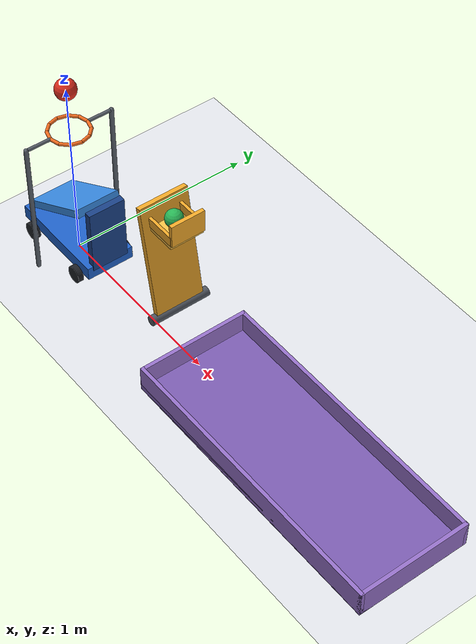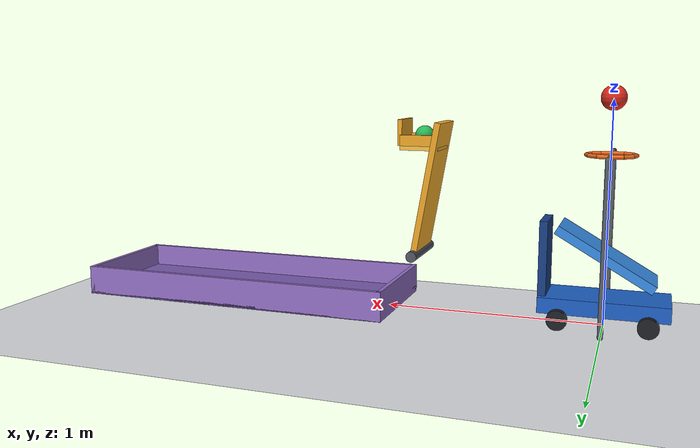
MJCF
<mujoco model="ball_cart_flap_release">
  <compiler angle="degree" autolimits="true"/>
  <option timestep="0.002" gravity="0 0 -9.81" integrator="implicitfast" solver="Newton" iterations="100"/>
  <size njmax="1000" nconmax="200"/>
  <visual>
    <global azimuth="135" elevation="-22"/>
  </visual>

  <worldbody>
    <light name="key_light" pos="0 -2 4" dir="0 0 -1" diffuse="0.8 0.8 0.8"/>
    <light name="fill_light" pos="3 2 3" dir="-1 -1 -1" diffuse="0.5 0.5 0.5"/>
    <geom name="floor" type="plane" size="5 3 0.1" pos="0 0 0" friction="0.8 0.02 0.02" condim="6" solref="0.01 1" rgba="0.88 0.89 0.91 1"/>

    <body name="ball1" pos="0 0 1.006603">
      <freejoint name="ball1_free"/>
      <geom name="ball1_sphere" type="sphere" size="0.055" mass="0.35" friction="0.15 0.005 0.003" condim="6" solref="0.008 1" rgba="0.88 0.18 0.12 1"/>
    </body>

    <body name="hoop" pos="0 0 0.76">
      <geom name="hoop_ring_01" type="capsule" size="0.009" fromto="0.105 0 0 0.090933 0.0525 0" rgba="0.95 0.42 0.12 1"/>
      <geom name="hoop_ring_02" type="capsule" size="0.009" fromto="0.090933 0.0525 0 0.0525 0.090933 0" rgba="0.95 0.42 0.12 1"/>
      <geom name="hoop_ring_03" type="capsule" size="0.009" fromto="0.0525 0.090933 0 0 0.105 0" rgba="0.95 0.42 0.12 1"/>
      <geom name="hoop_ring_04" type="capsule" size="0.009" fromto="0 0.105 0 -0.0525 0.090933 0" rgba="0.95 0.42 0.12 1"/>
      <geom name="hoop_ring_05" type="capsule" size="0.009" fromto="-0.0525 0.090933 0 -0.090933 0.0525 0" rgba="0.95 0.42 0.12 1"/>
      <geom name="hoop_ring_06" type="capsule" size="0.009" fromto="-0.090933 0.0525 0 -0.105 0 0" rgba="0.95 0.42 0.12 1"/>
      <geom name="hoop_ring_07" type="capsule" size="0.009" fromto="-0.105 0 0 -0.090933 -0.0525 0" rgba="0.95 0.42 0.12 1"/>
      <geom name="hoop_ring_08" type="capsule" size="0.009" fromto="-0.090933 -0.0525 0 -0.0525 -0.090933 0" rgba="0.95 0.42 0.12 1"/>
      <geom name="hoop_ring_09" type="capsule" size="0.009" fromto="-0.0525 -0.090933 0 0 -0.105 0" rgba="0.95 0.42 0.12 1"/>
      <geom name="hoop_ring_10" type="capsule" size="0.009" fromto="0 -0.105 0 0.0525 -0.090933 0" rgba="0.95 0.42 0.12 1"/>
      <geom name="hoop_ring_11" type="capsule" size="0.009" fromto="0.0525 -0.090933 0 0.090933 -0.0525 0" rgba="0.95 0.42 0.12 1"/>
      <geom name="hoop_ring_12" type="capsule" size="0.009" fromto="0.090933 -0.0525 0 0.105 0 0" rgba="0.95 0.42 0.12 1"/>
      <geom name="hoop_arm_left" type="capsule" size="0.009" fromto="0 0.105 0 0 0.24 0" rgba="0.35 0.38 0.42 1"/>
      <geom name="hoop_arm_right" type="capsule" size="0.009" fromto="0 -0.105 0 0 -0.24 0" rgba="0.35 0.38 0.42 1"/>
      <geom name="hoop_post_left" type="capsule" size="0.012" fromto="0 0.24 -0.748 0 0.24 0" rgba="0.35 0.38 0.42 1"/>
      <geom name="hoop_post_right" type="capsule" size="0.012" fromto="0 -0.24 -0.748 0 -0.24 0" rgba="0.35 0.38 0.42 1"/>
    </body>

    <body name="cart" pos="0 0 0.1">
      <joint name="cart_slide" type="slide" axis="1 0 0" range="0 0.62" damping="0.025" frictionloss="0.002" solreflimit="0.008 1"/>
      <geom name="cart_base" type="box" pos="0 0 0" size="0.28 0.13 0.035" mass="0.045" rgba="0.12 0.38 0.78 1"/>
      <geom name="cart_sloped_back" type="box" pos="0 0 0.22" quat="0.965925826 0 -0.258819045 0" size="0.24 0.12 0.02" mass="0.065" priority="1" friction="0.06 0.002 0.002" condim="3" solref="0.008 1" rgba="0.22 0.55 0.90 1"/>
      <geom name="cart_bumper" type="box" pos="0.265 0 0.19" size="0.018 0.10 0.18" mass="0.025" priority="1" friction="0.05 0.001 0.001" condim="3" solref="0.008 1" rgba="0.10 0.25 0.52 1"/>
      <geom name="cart_wheel_front_left" type="cylinder" pos="0.19 0.145 -0.055" quat="0.707106781 0.707106781 0 0" size="0.045 0.015" mass="0.005" contype="0" conaffinity="0" rgba="0.12 0.13 0.15 1"/>
      <geom name="cart_wheel_front_right" type="cylinder" pos="0.19 -0.145 -0.055" quat="0.707106781 0.707106781 0 0" size="0.045 0.015" mass="0.005" contype="0" conaffinity="0" rgba="0.12 0.13 0.15 1"/>
      <geom name="cart_wheel_rear_left" type="cylinder" pos="-0.19 0.145 -0.055" quat="0.707106781 0.707106781 0 0" size="0.045 0.015" mass="0.005" contype="0" conaffinity="0" rgba="0.12 0.13 0.15 1"/>
      <geom name="cart_wheel_rear_right" type="cylinder" pos="-0.19 -0.145 -0.055" quat="0.707106781 0.707106781 0 0" size="0.045 0.015" mass="0.005" contype="0" conaffinity="0" rgba="0.12 0.13 0.15 1"/>
    </body>

    <body name="flap" pos="0.85 0 0.28" quat="0.996194698 0 -0.087155743 0">
      <joint name="flap_hinge" type="hinge" axis="0 -1 0" range="-100 0" damping="0.012" frictionloss="0.003" armature="0.0005" solreflimit="0.006 1"/>
      <geom name="flap_panel" type="box" pos="0 0 0.31" size="0.014 0.13 0.31" mass="0.10" priority="1" friction="0.35 0.001 0.0001" condim="3" solref="0.008 1" rgba="0.94 0.66 0.16 1"/>
      <geom name="flap_shelf" type="box" pos="0.0738606 0 0.4869764" quat="0.996194698 0 0.087155743 0" size="0.09 0.09 0.01" mass="0.020" priority="1" friction="0.35 0.001 0.0001" condim="3" solref="0.008 1" rgba="0.98 0.76 0.28 1"/>
      <geom name="flap_front_lip" type="box" pos="0.1746487 0 0.5402846" quat="0.996194698 0 0.087155743 0" size="0.01 0.09 0.06" mass="0.012" priority="1" friction="0.35 0.001 0.0001" condim="3" solref="0.008 1" rgba="0.94 0.66 0.16 1"/>
      <geom name="flap_guard_left" type="box" pos="0.0799383 0.084 0.5214447" quat="0.996194698 0 0.087155743 0" size="0.09 0.008 0.025" mass="0.005" priority="1" friction="0.35 0.001 0.0001" condim="3" solref="0.008 1" rgba="0.94 0.66 0.16 1"/>
      <geom name="flap_guard_right" type="box" pos="0.0799383 -0.084 0.5214447" quat="0.996194698 0 0.087155743 0" size="0.09 0.008 0.025" mass="0.005" priority="1" friction="0.35 0.001 0.0001" condim="3" solref="0.008 1" rgba="0.94 0.66 0.16 1"/>
      <geom name="flap_axle" type="cylinder" pos="0 0 0" quat="0.707106781 0.707106781 0 0" size="0.025 0.16" mass="0.01" rgba="0.32 0.34 0.38 1"/>
    </body>

    <body name="ball2" pos="0.833176 0 0.827404">
      <freejoint name="ball2_free"/>
      <geom name="ball2_sphere" type="sphere" size="0.045" mass="0.035" friction="0.7 0.02 0.02" condim="6" solref="0.008 1" rgba="0.16 0.72 0.34 1"/>
    </body>

    <body name="box" pos="1.73 0 0">
      <geom name="box_bottom" type="box" pos="0 0 0.015" size="0.78 0.30 0.015" friction="0.8 0.02 0.02" condim="6" solref="0.01 1" rgba="0.48 0.36 0.69 1"/>
      <geom name="box_wall_left" type="box" pos="-0.77 0 0.07" size="0.01 0.30 0.07" friction="0.8 0.02 0.02" condim="6" solref="0.01 1" rgba="0.58 0.44 0.78 1"/>
      <geom name="box_wall_right" type="box" pos="0.77 0 0.07" size="0.01 0.30 0.07" friction="0.8 0.02 0.02" condim="6" solref="0.01 1" rgba="0.58 0.44 0.78 1"/>
      <geom name="box_wall_back" type="box" pos="0 0.29 0.07" size="0.78 0.01 0.07" friction="0.8 0.02 0.02" condim="6" solref="0.01 1" rgba="0.58 0.44 0.78 1"/>
      <geom name="box_wall_front" type="box" pos="0 -0.29 0.07" size="0.78 0.01 0.07" friction="0.8 0.02 0.02" condim="6" solref="0.01 1" rgba="0.58 0.44 0.78 1"/>
    </body>
  </worldbody>

  <keyframe>
    <key name="start" qpos="0 0 1.006603 1 0 0 0 0 0 0.833176 0 0.827404 1 0 0 0" qvel="0 0 0 0 0 0 0 0 0 0 0 0 0 0"/>
  </keyframe>
</mujoco>
